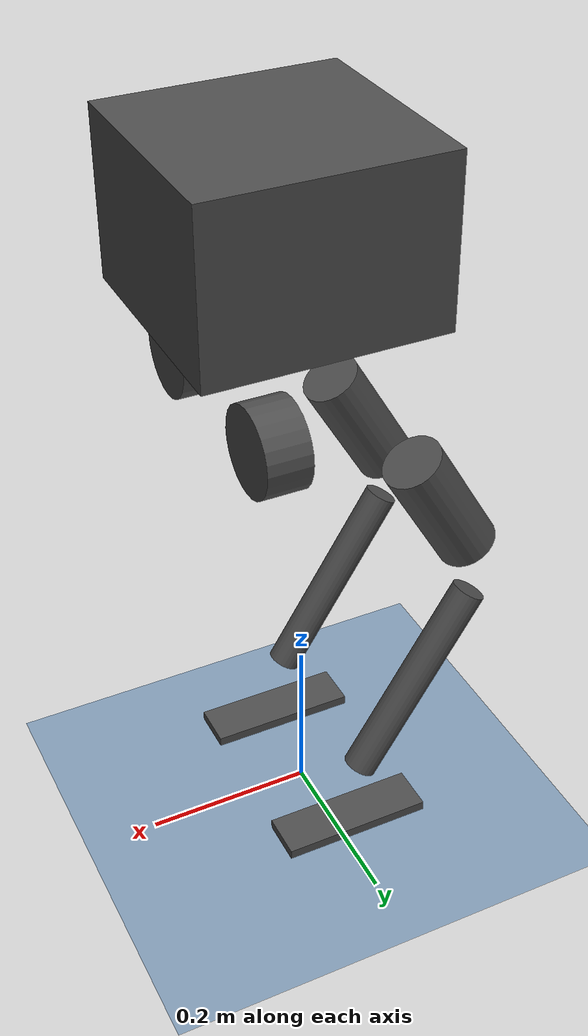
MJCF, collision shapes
<mujoco model="SF_TRON1">
    <compiler angle="radian" meshdir="../meshes/" />

    <option iterations="4" ls_iterations="5" timestep="0.002" integrator="Euler">
        <flag eulerdamp="disable"/>
    </option>

    <default>
        <default class="tron">
            <geom condim="1" contype="0" conaffinity="0"/>
            <site size="0.01" rgba="1 0 0 1" group="4"/>
            <joint axis="0 0 1" damping="1.5"/>

            <default class="tron/joint">
                <joint armature="0.01" frictionloss="0.3" actuatorfrcrange="-30 30"/>
                <position kp="45" kv="1.5"/>
            </default>

            <default class="tron/visual">
                <geom type="mesh" contype="0" conaffinity="0" density="0" group="2"/>
            </default>

            <default class="tron/collision">
                <geom group="3" rgba=".3 .3 .3 1"/>

                <default class="tron/collision/foot">
                    <geom friction="0.8 0.02 0.01" size="0.09 0.0275 0.006" pos="0.01 0 -0.05" type="box"
                          contype="1" conaffinity="1"/>
                </default>
            </default>

            <default class="tron/site">
                <site size="0.01" rgba="1 0 0 1" group="0"/>
            </default>
        </default>
    </default>

    <visual>
        <rgba com="0.502 1.0 0 0.5" contactpoint="1.0 1.0 0.6 0.4" contactforce="0.2 0.98 0.2 0.8"/>
        <scale com="0.2" forcewidth="0.05" contactwidth="0.10" contactheight="0.04"/>
    </visual>

    <asset>
        <mesh name="base_Link" file="base_Link.STL" />
        <mesh name="abad_L_Link" file="abad_L_Link.STL" />
        <mesh name="hip_L_Link" file="hip_L_Link.STL" />
        <mesh name="knee_L_Link" file="knee_L_Link.STL" />
        <mesh name="ankle_L_Link" file="ankle_L_Link.STL" />
        <mesh name="abad_R_Link" file="abad_R_Link.STL" />
        <mesh name="hip_R_Link" file="hip_R_Link.STL" />
        <mesh name="knee_R_Link" file="knee_R_Link.STL" />
        <mesh name="ankle_R_Link" file="ankle_R_Link.STL" />
    </asset>

    <asset>
        <texture type='skybox' builtin='gradient' width='512' height='512' rgb1="1.0 1.0 1.0" rgb2="1.0 1.0 1.0"/>
        <texture name="texplane" type="2d" builtin="checker" rgb1="0.35 0.35 0.35" rgb2="0.55 0.55 0.55" width="512" height="512" mark="cross" markrgb=".8 .8 .8"/>
        <material name="matplane" reflectance="0.0" texture="texplane" texrepeat="1 1" texuniform="true"/>
    </asset>

    <worldbody>
        <geom name="floor" rgba="0.5 0.6 0.7 1" pos="0 0 0" size="0 0 0.25" type="plane" material="matplane" condim="3"/>
        <camera name="track" mode="trackcom" pos="0 -2.3 1.6" xyaxes="1 0 0 0 0.707 0.707"/>
        <light directional="true" diffuse=".8 .8 .8" pos="0 0 10" dir="0 0 -10"/>

        <body name="base_Link" pos="0 0 0.85">
            <inertial pos="0.0457123 0.000139854 -0.163809" quat="0.972578 -0.00615364 -0.232461 0.00398682" mass="9.595" diaginertia="0.154712 0.11093 0.0846371" />
            <joint type="free" limited="false" damping="0.0000" stiffness="0.0000" armature="0"/>
            <site name="imu" pos="0 0 0" class="tron/site"/>
            <geom class="tron/visual" rgba="0.79216 0.81961 0.93333 1" mesh="base_Link" />
            <geom name="body_collision" class="tron/collision" size="0.135 0.13 0.095" pos="0.03 0 -0.072" type="box"/>

            <body name="abad_L_Link" pos="0.05556 0.105 -0.2602">
                <inertial pos="-0.06977 0.04479 0.00057" quat="0.595024 0.579772 0.394141 0.393019" mass="1.469" diaginertia="0.00252289 0.00208104 0.00139163" />
                <joint name="abad_L_Joint" class="tron/joint" pos="0 0 0" axis="1 0 0" limited="true" range="-0.38397 1.39626" />
                <geom class="tron/visual" rgba="0.79216 0.81961 0.93333 1" mesh="abad_L_Link" />
                <geom name="abad_L_collision" class="tron/collision" size="0.05 0.025" pos="0.03 0 0" quat="0.500398 0.5 0.499602 0.5" type="cylinder"/>

                <body name="hip_L_Link" pos="-0.077 0.0205 0">
                    <inertial pos="-0.02869 -0.0477 -0.03992" quat="0.853885 0.192797 0.226903 0.426877" mass="2.3" diaginertia="0.0233264 0.0230229 0.00277548" />
                    <joint name="hip_L_Joint" class="tron/joint" pos="0 0 0" axis="0 1 0" limited="true" range="-1.01229 1.39626" />
                    <geom class="tron/visual" rgba="1 1 1 1" mesh="hip_L_Link" />
                    <geom name="hip_L_collision" class="tron/collision" size="0.035 0.075" pos="-0.1 -0.03 -0.14" quat="0.965093 0 0.261909 0" type="cylinder"/>

                    <body name="knee_L_Link" pos="-0.15 -0.0205 -0.25981">
                        <inertial pos="0.11452 0.0013 -0.19367" quat="0.965543 0.00476557 -0.259713 -0.0159388" mass="1.22" diaginertia="0.0144103 0.0143581 0.00061582" />
                        <joint name="knee_L_Joint" class="tron/joint" pos="0 0 0" axis="0 -1 0" limited="true" range="-0.872665 1.36136" />
                        <geom class="tron/visual" rgba="0.79216 0.81961 0.93333 1" mesh="knee_L_Link" />
                        <geom name="knee_L_collision" class="tron/collision" size="0.02 0.13" pos="0.078 0 -0.12" quat="0.962425 0 -0.271547 0" type="cylinder"/>

                        <body name="ankle_L_Link" pos="0.15 0 -0.25981">
                            <inertial pos="0.01074 -0.00061 -0.03314" quat="0.013732 0.694322 0.0150212 0.719377" mass="0.62" diaginertia="0.0019759 0.00181179 0.000523633" />
                            <joint name="ankle_L_Joint" class="tron/joint" pos="0 0 0" axis="0 -1 0" limited="true" range="-1.15192 1.5708" frictionloss="0.01" />
                            <geom class="tron/visual" rgba="0.26667 0.26667 0.26667 1" mesh="ankle_L_Link" />
                            <geom name="foot_L_collision" class="tron/collision/foot"/>
                            <site name="foot_L_site" pos="0 0 -0.055" class="tron/site"/>
                        </body>
                    </body>
                </body>
            </body>
            <body name="abad_R_Link" pos="0.05556 -0.105 -0.2602">
                <inertial pos="-0.06977 -0.04479 0.00057" quat="0.393019 0.394141 0.579772 0.595024" mass="1.469" diaginertia="0.00252289 0.00208104 0.00139163" />
                <joint name="abad_R_Joint" class="tron/joint" pos="0 0 0" axis="1 0 0" limited="true" range="-1.39626 0.38397" />
                <geom class="tron/visual" rgba="0.79216 0.81961 0.93333 1" mesh="abad_R_Link" />
                <geom name="abad_R_collision" class="tron/collision" size="0.05 0.025" pos="0.03 0 0" quat="0.500398 0.5 0.499602 0.5" type="cylinder"/>

                <body name="hip_R_Link" pos="-0.077 -0.0205 0">
                    <inertial pos="-0.02869 0.0477 -0.03992" quat="0.426877 0.226903 0.192797 0.853885" mass="2.3" diaginertia="0.0233264 0.0230229 0.00277548" />
                    <joint name="hip_R_Joint" class="tron/joint" pos="0 0 0" axis="0 -1 0" limited="true" range="-1.39626 1.01229" />
                    <geom class="tron/visual" rgba="1 1 1 1" mesh="hip_R_Link" />
                    <geom name="hip_R_collision" class="tron/collision" size="0.035 0.075" pos="-0.1 0.03 -0.14" quat="0.965093 0 0.261909 0" type="cylinder"/>

                    <body name="knee_R_Link" pos="-0.15 0.0205 -0.25981">
                        <inertial pos="0.11452 -0.0013 -0.19367" quat="0.965543 -0.00476557 -0.259713 0.0159388" mass="1.22" diaginertia="0.0144103 0.0143581 0.00061582" />
                        <joint name="knee_R_Joint" class="tron/joint" pos="0 0 0" axis="0 1 0" limited="true" range="-1.36136 0.872665" />
                        <geom class="tron/visual" rgba="0.79216 0.81961 0.93333 1" mesh="knee_R_Link" />
                        <geom name="knee_R_collision" class="tron/collision" size="0.02 0.13" pos="0.078 0 -0.12" quat="0.962425 0 -0.271547 0" type="cylinder"/>

                        <body name="ankle_R_Link" pos="0.15 0 -0.25981">
                            <inertial pos="0.01074 0.00061 -0.03314" quat="-0.013732 0.694322 -0.0150212 0.719377" mass="0.62" diaginertia="0.0019759 0.00181179 0.000523633" />
                            <joint name="ankle_R_Joint" class="tron/joint" pos="0 0 0" axis="0 -1 0" limited="true" range="-1.15192 1.5708" frictionloss="0.01" />
                            <geom class="tron/visual" rgba="0.26667 0.26667 0.26667 1" mesh="ankle_R_Link" />
                            <geom name="foot_R_collision" class="tron/collision/foot"/>
                            <site name="foot_R_site" pos="0 0 -0.055" class="tron/site"/>
                        </body>
                    </body>
                </body>
            </body>
        </body>
    </worldbody>

    <actuator>
        <position class="tron/joint"  name="abad_L_Joint"   joint="abad_L_Joint"  />
        <position class="tron/joint"  name="hip_L_Joint"    joint="hip_L_Joint"   />
        <position class="tron/joint"  name="knee_L_Joint"   joint="knee_L_Joint"  />
        <position class="tron/joint"  name="ankle_L_Joint"  joint="ankle_L_Joint" />
        <position class="tron/joint"  name="abad_R_Joint"   joint="abad_R_Joint"  />
        <position class="tron/joint"  name="hip_R_Joint"    joint="hip_R_Joint"   />
        <position class="tron/joint"  name="knee_R_Joint"   joint="knee_R_Joint"  />
        <position class="tron/joint"  name="ankle_R_Joint"  joint="ankle_R_Joint" />
    </actuator>

    <sensor>
        <gyro site="imu" name="gyro"/>
        <velocimeter site="imu" name="local_linvel"/>
        <accelerometer site="imu" name="accelerometer"/>
        <framezaxis objtype="site" objname="imu" name="upvector"/>
        <framexaxis objtype="site" objname="imu" name="forwardvector"/>
        <framelinvel objtype="site" objname="imu" name="global_linvel"/>
        <frameangvel objtype="site" objname="imu" name="global_angvel"/>
        <framepos objtype="site" objname="imu" name="position"/>
        <framequat objtype="site" objname="imu" name="orientation"/>

        <framelinvel objtype="site" objname="foot_L_site" name="foot_L_site_global_linvel"/>
        <framelinvel objtype="site" objname="foot_R_site" name="foot_R_site_global_linvel"/>

        <framexaxis objtype="site" objname="foot_L_site" name="foot_L_site_upvector"/>
        <framexaxis objtype="site" objname="foot_R_site" name="foot_R_site_upvector"/>
        <framepos objtype="site" objname="foot_L_site" name="foot_L_site_pos"/>
        <framepos objtype="site" objname="foot_R_site" name="foot_R_site_pos"/>
    </sensor>

    <keyframe>
        <key name="home"
            qpos="
                0 0 0.8
                1 0 0 0
                0 0 0 0 0 0 0 0"
            ctrl="
                0 0 0 0 0 0 0 0"
        />
    </keyframe>

</mujoco>
